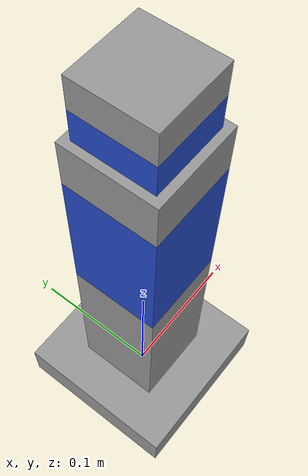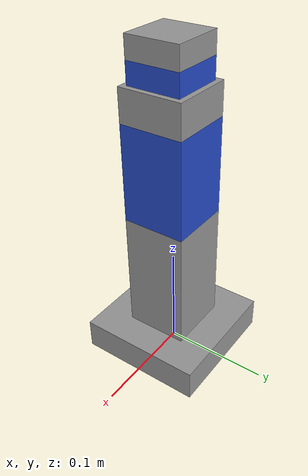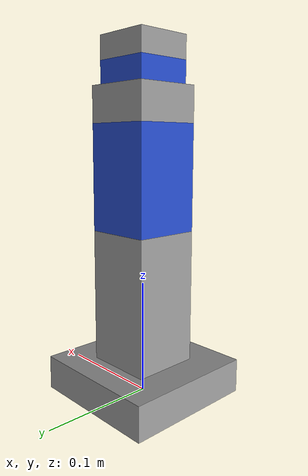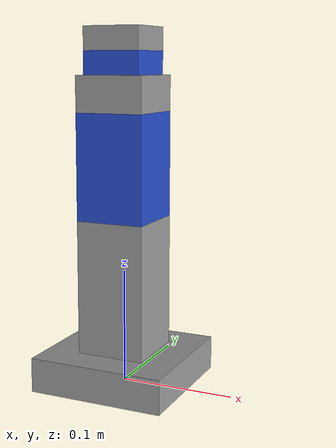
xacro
<?xml version="1.0"?>
<robot xmlns:xacro="http://www.ros.org/wiki/xacro">

    <!-- base_link - arm mount plate (centered on chassis) -->
    <link name="base_link">
        <visual>
            <geometry>
                <box size="0.12 0.12 0.03" />
            </geometry>
            <origin xyz="0 0 0.015" rpy="0 0 0" />
            <material name="grey" />
        </visual>
        <collision>
            <geometry>
                <box size="0.12 0.12 0.03" />
            </geometry>
            <origin xyz="0 0 0.015" rpy="0 0 0" />
        </collision>
    </link>

    <!-- shoulder_link - base rotation column (purple disc), extends 29.3mm up -->
    <link name="shoulder_link">
        <visual>
            <geometry>
                <cylinder radius="0.05" length="0.0293" />
            </geometry>
            <origin xyz="0 0 0.01465" rpy="0 0 0" />
            <material name="dark_green" />
        </visual>
        <collision>
            <geometry>
                <cylinder radius="0.05" length="0.0293" />
            </geometry>
            <origin xyz="0 0 0.01465" rpy="0 0 0" />
        </collision>
    </link>

    <!-- arm_link - upper arm, 118mm long (joint2 -> joint3) -->
    <link name="arm_link">
        <visual>
            <geometry>
                <box size="0.06 0.06 0.118" />
            </geometry>
            <origin xyz="0 0 0.059" rpy="0 0 0" />
            <material name="grey" />
        </visual>
        <collision>
            <geometry>
                <box size="0.06 0.06 0.118" />
            </geometry>
            <origin xyz="0 0 0.059" rpy="0 0 0" />
        </collision>
    </link>

    <!-- elbow_link - forearm link, 92mm long (joint3 -> joint4) -->
    <link name="elbow_link">
        <visual>
            <geometry>
                <box size="0.06 0.06 0.092" />
            </geometry>
            <origin xyz="0 0 0.046" rpy="0 0 0" />
            <material name="blue" />
        </visual>
        <collision>
            <geometry>
                <box size="0.06 0.06 0.092" />
            </geometry>
            <origin xyz="0 0 0.046" rpy="0 0 0" />
        </collision>
    </link>

    <!-- forearm_link - wrist segment, 31mm long (joint4 -> joint5) -->
    <link name="forearm_link">
        <visual>
            <geometry>
                <box size="0.06 0.06 0.031" />
            </geometry>
            <origin xyz="0 0 0.0155" rpy="0 0 0" />
            <material name="grey" />
        </visual>
        <collision>
            <geometry>
                <box size="0.06 0.06 0.031" />
            </geometry>
            <origin xyz="0 0 0.0155" rpy="0 0 0" />
        </collision>
    </link>

    <!-- wrist_link - small wrist/hand carrier after the roll joint -->
    <link name="wrist_link">
        <visual>
            <geometry>
                <box size="0.05 0.05 0.02" />
            </geometry>
            <origin xyz="0 0 0.01" rpy="0 0 0" />
            <material name="blue" />
        </visual>
        <collision>
            <geometry>
                <box size="0.05 0.05 0.02" />
            </geometry>
            <origin xyz="0 0 0.01" rpy="0 0 0" />
        </collision>
    </link>

    <!-- hand_link - short fixed mount where the gripper attaches.
         joint5 -> tool_link total = 0.02 + 0.01 = 0.03 (30mm measured from
         the servo output shaft face to the gripper base plate) -->
    <link name="hand_link">
        <visual>
            <geometry>
                <box size="0.05 0.05 0.02" />
            </geometry>
            <origin xyz="0 0 0.01" rpy="0 0 0" />
            <material name="grey" />
        </visual>
        <collision>
            <geometry>
                <box size="0.05 0.05 0.02" />
            </geometry>
            <origin xyz="0 0 0.01" rpy="0 0 0" />
        </collision>
    </link>

    <!-- tool_link - gripper mounting frame (gripper attaches here) -->
    <link name="tool_link" />

    <!-- joint1 - base yaw, about vertical Z.
         Revolute (not continuous) so MoveIt/RViz exposes a joint slider.
         Range +-135deg matches the ZP25S 270deg travel. -->
    <joint name="joint1" type="revolute">
        <parent link="base_link" />
        <child link="shoulder_link" />
        <origin xyz="0 0 0" rpy="0 0 0" />
        <axis xyz="0 0 1" />
        <limit effort="2.45" velocity="1.0" lower="-2.35619" upper="2.35619" />
    </joint>

    <!-- joint2 - shoulder pitch, about Y.
         Initial (servo zero) at -45deg. Range from -45deg to +90deg;
         cannot go further negative than -45deg (mount/servo stalls). -->
    <joint name="joint2" type="revolute">
        <parent link="shoulder_link" />
        <child link="arm_link" />
        <origin xyz="0 0 0.0293" rpy="0 0 0" />
        <axis xyz="0 1 0" />
        <limit effort="2.45" velocity="1.0" lower="-0.785398" upper="1.5708" />
    </joint>

    <!-- joint3 - elbow pitch, about Y. Initial at 0deg (vertical), range +-90deg -->
    <joint name="joint3" type="revolute">
        <parent link="arm_link" />
        <child link="elbow_link" />
        <origin xyz="0 0 0.118" rpy="0 0 0" />
        <axis xyz="0 1 0" />
        <limit effort="2.45" velocity="1.0" lower="-1.5708" upper="1.5708" />
    </joint>

    <!-- joint4 - wrist pitch, about Y.
         Initial (servo zero) at +90deg; cannot go further positive,
         negative travel down to -90deg -->
    <joint name="joint4" type="revolute">
        <parent link="elbow_link" />
        <child link="forearm_link" />
        <origin xyz="0 0 0.092" rpy="0 0 0" />
        <axis xyz="0 1 0" />
        <limit effort="2.45" velocity="1.0" lower="-1.5708" upper="1.5708" />
    </joint>

    <!-- joint5 - wrist roll, about the arm axis Z.
         Revolute (not continuous) so MoveIt/RViz exposes a joint slider.
         Range +-135deg matches the ZP25S 270deg travel. -->
    <joint name="joint5" type="revolute">
        <parent link="forearm_link" />
        <child link="wrist_link" />
        <origin xyz="0 0 0.031" rpy="0 0 0" />
        <axis xyz="0 0 1" />
        <limit effort="2.45" velocity="1.0" lower="-2.35619" upper="2.35619" />
    </joint>

    <!-- wrist_hand_joint - fixed, wrist -> hand, 20mm of the 30mm gap -->
    <joint name="wrist_hand_joint" type="fixed">
        <parent link="wrist_link" />
        <child link="hand_link" />
        <origin xyz="0 0 0.02" rpy="0 0 0" />
    </joint>

    <!-- hand_tool_joint - fixed, hand -> tool (gripper mounting face), 10mm.
         joint5 -> tool_link = 0.02 + 0.01 = 0.03 (30mm, servo shaft to
         gripper base plate) -->
    <joint name="hand_tool_joint" type="fixed">
        <parent link="hand_link" />
        <child link="tool_link" />
        <origin xyz="0 0 0.01" rpy="0 0 0" />
    </joint>

</robot>
